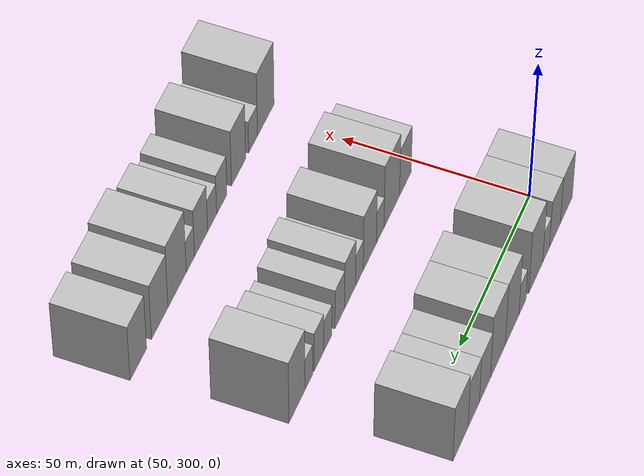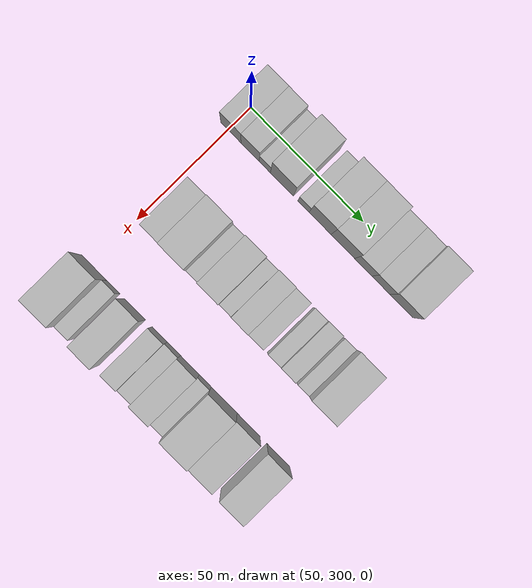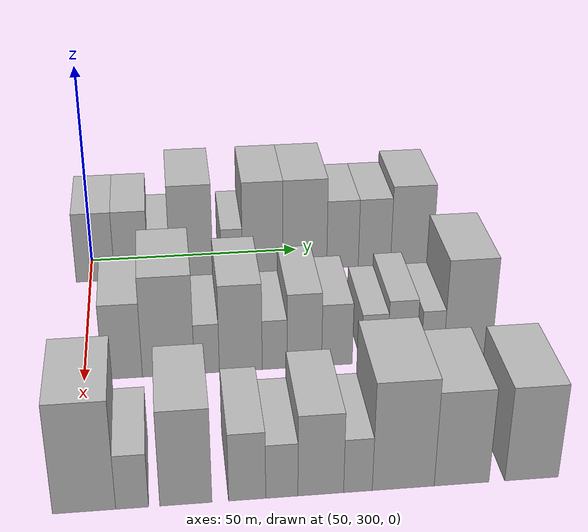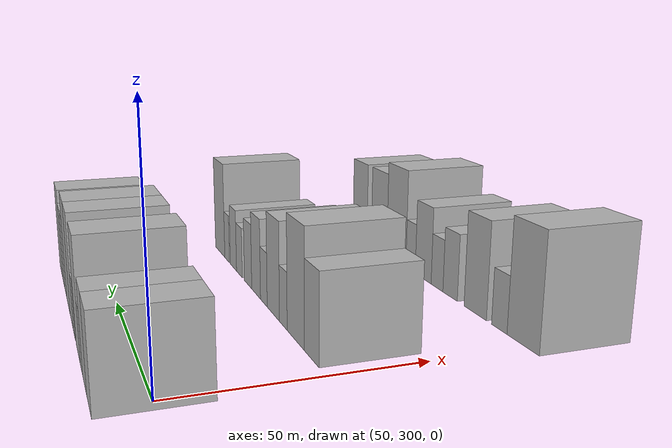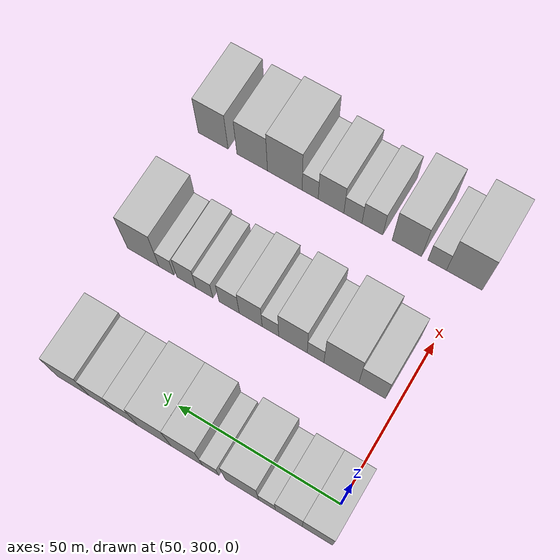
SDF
<sdf version="1.6">
 <world name="default">
  <model name="building_73">
   <static>1</static>
   <pose>50.0000 301.2231 0 0.000000 0.000000 0.000000</pose>
   <link name="link">
    <pose>0 0 9.00 0 0 0</pose>
    <collision name="collision"><geometry><box><size>20.0000 8.9927 18.0000</size></box></geometry></collision>
    <visual name="visual">
     <cast_shadows>0</cast_shadows>
     <geometry><box><size>20.0000 8.9927 18.0000</size></box></geometry>
     <material>
      <script>
       <uri>model://HANNAS_wall/materials/scripts</uri>
       <uri>model://HANNAS_wall/materials/textures</uri>
       <name>vrc/HANNAS_wall</name>
      </script>
     </material>
    </visual>
   </link>
  </model>
  <model name="building_74">
   <static>1</static>
   <pose>50.0000 309.7520 0 0.000000 0.000000 0.000000</pose>
   <link name="link">
    <pose>0 0 9.00 0 0 0</pose>
    <collision name="collision"><geometry><box><size>20.0000 8.0651 18.0000</size></box></geometry></collision>
    <visual name="visual">
     <cast_shadows>0</cast_shadows>
     <geometry><box><size>20.0000 8.0651 18.0000</size></box></geometry>
     <material>
      <script>
       <uri>model://HANNAS_wall/materials/scripts</uri>
       <uri>model://HANNAS_wall/materials/textures</uri>
       <name>vrc/HANNAS_wall</name>
      </script>
     </material>
    </visual>
   </link>
  </model>
  <model name="building_75">
   <static>1</static>
   <pose>50.0000 316.2865 0 0.000000 0.000000 0.000000</pose>
   <link name="link">
    <pose>0 0 6.00 0 0 0</pose>
    <collision name="collision"><geometry><box><size>20.0000 5.0039 12.0000</size></box></geometry></collision>
    <visual name="visual">
     <cast_shadows>0</cast_shadows>
     <geometry><box><size>20.0000 5.0039 12.0000</size></box></geometry>
     <material>
      <script>
       <uri>model://HANNAS_wall/materials/scripts</uri>
       <uri>model://HANNAS_wall/materials/textures</uri>
       <name>vrc/HANNAS_wall</name>
      </script>
     </material>
    </visual>
   </link>
  </model>
  <model name="building_76">
   <static>1</static>
   <pose>50.0000 323.8845 0 0.000000 0.000000 0.000000</pose>
   <link name="link">
    <pose>0 0 12.00 0 0 0</pose>
    <collision name="collision"><geometry><box><size>20.0000 10.1921 24.0000</size></box></geometry></collision>
    <visual name="visual">
     <cast_shadows>0</cast_shadows>
     <geometry><box><size>20.0000 10.1921 24.0000</size></box></geometry>
     <material>
      <script>
       <uri>model://HANNAS_wall/materials/scripts</uri>
       <uri>model://HANNAS_wall/materials/textures</uri>
       <name>vrc/HANNAS_wall</name>
      </script>
     </material>
    </visual>
   </link>
  </model>
  <model name="building_77">
   <static>1</static>
   <pose>50.0000 333.5135 0 0.000000 0.000000 0.000000</pose>
   <link name="link">
    <pose>0 0 6.00 0 0 0</pose>
    <collision name="collision"><geometry><box><size>20.0000 5.0658 12.0000</size></box></geometry></collision>
    <visual name="visual">
     <cast_shadows>0</cast_shadows>
     <geometry><box><size>20.0000 5.0658 12.0000</size></box></geometry>
     <material>
      <script>
       <uri>model://HANNAS_wall/materials/scripts</uri>
       <uri>model://HANNAS_wall/materials/textures</uri>
       <name>vrc/HANNAS_wall</name>
      </script>
     </material>
    </visual>
   </link>
  </model>
  <model name="building_78">
   <static>1</static>
   <pose>50.0000 340.8929 0 0.000000 0.000000 0.000000</pose>
   <link name="link">
    <pose>0 0 12.00 0 0 0</pose>
    <collision name="collision"><geometry><box><size>20.0000 9.6931 24.0000</size></box></geometry></collision>
    <visual name="visual">
     <cast_shadows>0</cast_shadows>
     <geometry><box><size>20.0000 9.6931 24.0000</size></box></geometry>
     <material>
      <script>
       <uri>model://HANNAS_wall/materials/scripts</uri>
       <uri>model://HANNAS_wall/materials/textures</uri>
       <name>vrc/HANNAS_wall</name>
      </script>
     </material>
    </visual>
   </link>
  </model>
  <model name="building_79">
   <static>1</static>
   <pose>50.0000 351.0187 0 0.000000 0.000000 0.000000</pose>
   <link name="link">
    <pose>0 0 12.00 0 0 0</pose>
    <collision name="collision"><geometry><box><size>20.0000 10.5584 24.0000</size></box></geometry></collision>
    <visual name="visual">
     <cast_shadows>0</cast_shadows>
     <geometry><box><size>20.0000 10.5584 24.0000</size></box></geometry>
     <material>
      <script>
       <uri>model://HANNAS_wall/materials/scripts</uri>
       <uri>model://HANNAS_wall/materials/textures</uri>
       <name>vrc/HANNAS_wall</name>
      </script>
     </material>
    </visual>
   </link>
  </model>
  <model name="building_80">
   <static>1</static>
   <pose>50.0000 360.1405 0 0.000000 0.000000 0.000000</pose>
   <link name="link">
    <pose>0 0 9.00 0 0 0</pose>
    <collision name="collision"><geometry><box><size>20.0000 7.6852 18.0000</size></box></geometry></collision>
    <visual name="visual">
     <cast_shadows>0</cast_shadows>
     <geometry><box><size>20.0000 7.6852 18.0000</size></box></geometry>
     <material>
      <script>
       <uri>model://HANNAS_wall/materials/scripts</uri>
       <uri>model://HANNAS_wall/materials/textures</uri>
       <name>vrc/HANNAS_wall</name>
      </script>
     </material>
    </visual>
   </link>
  </model>
  <model name="building_81">
   <static>1</static>
   <pose>50.0000 367.9223 0 0.000000 0.000000 0.000000</pose>
   <link name="link">
    <pose>0 0 9.00 0 0 0</pose>
    <collision name="collision"><geometry><box><size>20.0000 7.8785 18.0000</size></box></geometry></collision>
    <visual name="visual">
     <cast_shadows>0</cast_shadows>
     <geometry><box><size>20.0000 7.8785 18.0000</size></box></geometry>
     <material>
      <script>
       <uri>model://HANNAS_wall/materials/scripts</uri>
       <uri>model://HANNAS_wall/materials/textures</uri>
       <name>vrc/HANNAS_wall</name>
      </script>
     </material>
    </visual>
   </link>
  </model>
  <model name="building_82">
   <static>1</static>
   <pose>50.0000 377.0366 0 0.000000 0.000000 0.000000</pose>
   <link name="link">
    <pose>0 0 10.50 0 0 0</pose>
    <collision name="collision"><geometry><box><size>20.0000 10.3501 21.0000</size></box></geometry></collision>
    <visual name="visual">
     <cast_shadows>0</cast_shadows>
     <geometry><box><size>20.0000 10.3501 21.0000</size></box></geometry>
     <material>
      <script>
       <uri>model://HANNAS_wall/materials/scripts</uri>
       <uri>model://HANNAS_wall/materials/textures</uri>
       <name>vrc/HANNAS_wall</name>
      </script>
     </material>
    </visual>
   </link>
  </model>
  <model name="building_156">
   <static>1</static>
   <pose>90.0000 307.8784 0 0.000000 0.000000 0.000000</pose>
   <link name="link">
    <pose>0 0 9.00 0 0 0</pose>
    <collision name="collision"><geometry><box><size>20.0000 8.2113 18.0000</size></box></geometry></collision>
    <visual name="visual">
     <cast_shadows>0</cast_shadows>
     <geometry><box><size>20.0000 8.2113 18.0000</size></box></geometry>
     <material>
      <script>
       <uri>model://HANNAS_wall/materials/scripts</uri>
       <uri>model://HANNAS_wall/materials/textures</uri>
       <name>vrc/HANNAS_wall</name>
      </script>
     </material>
    </visual>
   </link>
  </model>
  <model name="building_157">
   <static>1</static>
   <pose>90.0000 317.3934 0 0.000000 0.000000 0.000000</pose>
   <link name="link">
    <pose>0 0 12.00 0 0 0</pose>
    <collision name="collision"><geometry><box><size>20.0000 10.8187 24.0000</size></box></geometry></collision>
    <visual name="visual">
     <cast_shadows>0</cast_shadows>
     <geometry><box><size>20.0000 10.8187 24.0000</size></box></geometry>
     <material>
      <script>
       <uri>model://HANNAS_wall/materials/scripts</uri>
       <uri>model://HANNAS_wall/materials/textures</uri>
       <name>vrc/HANNAS_wall</name>
      </script>
     </material>
    </visual>
   </link>
  </model>
  <model name="building_158">
   <static>1</static>
   <pose>90.0000 325.4134 0 0.000000 0.000000 0.000000</pose>
   <link name="link">
    <pose>0 0 6.00 0 0 0</pose>
    <collision name="collision"><geometry><box><size>20.0000 5.2213 12.0000</size></box></geometry></collision>
    <visual name="visual">
     <cast_shadows>0</cast_shadows>
     <geometry><box><size>20.0000 5.2213 12.0000</size></box></geometry>
     <material>
      <script>
       <uri>model://HANNAS_wall/materials/scripts</uri>
       <uri>model://HANNAS_wall/materials/textures</uri>
       <name>vrc/HANNAS_wall</name>
      </script>
     </material>
    </visual>
   </link>
  </model>
  <model name="building_159">
   <static>1</static>
   <pose>90.0000 332.5241 0 0.000000 0.000000 0.000000</pose>
   <link name="link">
    <pose>0 0 10.50 0 0 0</pose>
    <collision name="collision"><geometry><box><size>20.0000 9.0000 21.0000</size></box></geometry></collision>
    <visual name="visual">
     <cast_shadows>0</cast_shadows>
     <geometry><box><size>20.0000 9.0000 21.0000</size></box></geometry>
     <material>
      <script>
       <uri>model://HANNAS_wall/materials/scripts</uri>
       <uri>model://HANNAS_wall/materials/textures</uri>
       <name>vrc/HANNAS_wall</name>
      </script>
     </material>
    </visual>
   </link>
  </model>
  <model name="building_160">
   <static>1</static>
   <pose>90.0000 339.6397 0 0.000000 0.000000 0.000000</pose>
   <link name="link">
    <pose>0 0 6.00 0 0 0</pose>
    <collision name="collision"><geometry><box><size>20.0000 5.2312 12.0000</size></box></geometry></collision>
    <visual name="visual">
     <cast_shadows>0</cast_shadows>
     <geometry><box><size>20.0000 5.2312 12.0000</size></box></geometry>
     <material>
      <script>
       <uri>model://HANNAS_wall/materials/scripts</uri>
       <uri>model://HANNAS_wall/materials/textures</uri>
       <name>vrc/HANNAS_wall</name>
      </script>
     </material>
    </visual>
   </link>
  </model>
  <model name="building_161">
   <static>1</static>
   <pose>90.0000 345.9311 0 0.000000 0.000000 0.000000</pose>
   <link name="link">
    <pose>0 0 9.00 0 0 0</pose>
    <collision name="collision"><geometry><box><size>20.0000 7.3518 18.0000</size></box></geometry></collision>
    <visual name="visual">
     <cast_shadows>0</cast_shadows>
     <geometry><box><size>20.0000 7.3518 18.0000</size></box></geometry>
     <material>
      <script>
       <uri>model://HANNAS_wall/materials/scripts</uri>
       <uri>model://HANNAS_wall/materials/textures</uri>
       <name>vrc/HANNAS_wall</name>
      </script>
     </material>
    </visual>
   </link>
  </model>
  <model name="building_162">
   <static>1</static>
   <pose>90.0000 352.8649 0 0.000000 0.000000 0.000000</pose>
   <link name="link">
    <pose>0 0 7.50 0 0 0</pose>
    <collision name="collision"><geometry><box><size>20.0000 6.5157 15.0000</size></box></geometry></collision>
    <visual name="visual">
     <cast_shadows>0</cast_shadows>
     <geometry><box><size>20.0000 6.5157 15.0000</size></box></geometry>
     <material>
      <script>
       <uri>model://HANNAS_wall/materials/scripts</uri>
       <uri>model://HANNAS_wall/materials/textures</uri>
       <name>vrc/HANNAS_wall</name>
      </script>
     </material>
    </visual>
   </link>
  </model>
  <model name="building_163">
   <static>1</static>
   <pose>90.0000 360.8877 0 0.000000 0.000000 0.000000</pose>
   <link name="link">
    <pose>0 0 6.00 0 0 0</pose>
    <collision name="collision"><geometry><box><size>20.0000 5.5297 12.0000</size></box></geometry></collision>
    <visual name="visual">
     <cast_shadows>0</cast_shadows>
     <geometry><box><size>20.0000 5.5297 12.0000</size></box></geometry>
     <material>
      <script>
       <uri>model://HANNAS_wall/materials/scripts</uri>
       <uri>model://HANNAS_wall/materials/textures</uri>
       <name>vrc/HANNAS_wall</name>
      </script>
     </material>
    </visual>
   </link>
  </model>
  <model name="building_164">
   <static>1</static>
   <pose>90.0000 366.7711 0 0.000000 0.000000 0.000000</pose>
   <link name="link">
    <pose>0 0 7.50 0 0 0</pose>
    <collision name="collision"><geometry><box><size>20.0000 6.2372 15.0000</size></box></geometry></collision>
    <visual name="visual">
     <cast_shadows>0</cast_shadows>
     <geometry><box><size>20.0000 6.2372 15.0000</size></box></geometry>
     <material>
      <script>
       <uri>model://HANNAS_wall/materials/scripts</uri>
       <uri>model://HANNAS_wall/materials/textures</uri>
       <name>vrc/HANNAS_wall</name>
      </script>
     </material>
    </visual>
   </link>
  </model>
  <model name="building_165">
   <static>1</static>
   <pose>90.0000 373.3327 0 0.000000 0.000000 0.000000</pose>
   <link name="link">
    <pose>0 0 6.00 0 0 0</pose>
    <collision name="collision"><geometry><box><size>20.0000 4.8859 12.0000</size></box></geometry></collision>
    <visual name="visual">
     <cast_shadows>0</cast_shadows>
     <geometry><box><size>20.0000 4.8859 12.0000</size></box></geometry>
     <material>
      <script>
       <uri>model://HANNAS_wall/materials/scripts</uri>
       <uri>model://HANNAS_wall/materials/textures</uri>
       <name>vrc/HANNAS_wall</name>
      </script>
     </material>
    </visual>
   </link>
  </model>
  <model name="building_166">
   <static>1</static>
   <pose>90.0000 381.0127 0 0.000000 0.000000 0.000000</pose>
   <link name="link">
    <pose>0 0 12.00 0 0 0</pose>
    <collision name="collision"><geometry><box><size>20.0000 10.4741 24.0000</size></box></geometry></collision>
    <visual name="visual">
     <cast_shadows>0</cast_shadows>
     <geometry><box><size>20.0000 10.4741 24.0000</size></box></geometry>
     <material>
      <script>
       <uri>model://HANNAS_wall/materials/scripts</uri>
       <uri>model://HANNAS_wall/materials/textures</uri>
       <name>vrc/HANNAS_wall</name>
      </script>
     </material>
    </visual>
   </link>
  </model>
  <model name="building_239">
   <static>1</static>
   <pose>130.0000 301.3521 0 0.000000 0.000000 0.000000</pose>
   <link name="link">
    <pose>0 0 12.00 0 0 0</pose>
    <collision name="collision"><geometry><box><size>20.0000 11.1936 24.0000</size></box></geometry></collision>
    <visual name="visual">
     <cast_shadows>0</cast_shadows>
     <geometry><box><size>20.0000 11.1936 24.0000</size></box></geometry>
     <material>
      <script>
       <uri>model://HANNAS_wall/materials/scripts</uri>
       <uri>model://HANNAS_wall/materials/textures</uri>
       <name>vrc/HANNAS_wall</name>
      </script>
     </material>
    </visual>
   </link>
  </model>
  <model name="building_240">
   <static>1</static>
   <pose>130.0000 309.8819 0 0.000000 0.000000 0.000000</pose>
   <link name="link">
    <pose>0 0 6.00 0 0 0</pose>
    <collision name="collision"><geometry><box><size>20.0000 5.8661 12.0000</size></box></geometry></collision>
    <visual name="visual">
     <cast_shadows>0</cast_shadows>
     <geometry><box><size>20.0000 5.8661 12.0000</size></box></geometry>
     <material>
      <script>
       <uri>model://HANNAS_wall/materials/scripts</uri>
       <uri>model://HANNAS_wall/materials/textures</uri>
       <name>vrc/HANNAS_wall</name>
      </script>
     </material>
    </visual>
   </link>
  </model>
  <model name="building_241">
   <static>1</static>
   <pose>130.0000 319.5035 0 0.000000 0.000000 0.000000</pose>
   <link name="link">
    <pose>0 0 10.50 0 0 0</pose>
    <collision name="collision"><geometry><box><size>20.0000 9.3770 21.0000</size></box></geometry></collision>
    <visual name="visual">
     <cast_shadows>0</cast_shadows>
     <geometry><box><size>20.0000 9.3770 21.0000</size></box></geometry>
     <material>
      <script>
       <uri>model://HANNAS_wall/materials/scripts</uri>
       <uri>model://HANNAS_wall/materials/textures</uri>
       <name>vrc/HANNAS_wall</name>
      </script>
     </material>
    </visual>
   </link>
  </model>
  <model name="building_242">
   <static>1</static>
   <pose>130.0000 330.5554 0 0.000000 0.000000 0.000000</pose>
   <link name="link">
    <pose>0 0 7.50 0 0 0</pose>
    <collision name="collision"><geometry><box><size>20.0000 6.7268 15.0000</size></box></geometry></collision>
    <visual name="visual">
     <cast_shadows>0</cast_shadows>
     <geometry><box><size>20.0000 6.7268 15.0000</size></box></geometry>
     <material>
      <script>
       <uri>model://HANNAS_wall/materials/scripts</uri>
       <uri>model://HANNAS_wall/materials/textures</uri>
       <name>vrc/HANNAS_wall</name>
      </script>
     </material>
    </visual>
   </link>
  </model>
  <model name="building_243">
   <static>1</static>
   <pose>130.0000 336.8509 0 0.000000 0.000000 0.000000</pose>
   <link name="link">
    <pose>0 0 6.00 0 0 0</pose>
    <collision name="collision"><geometry><box><size>20.0000 5.8641 12.0000</size></box></geometry></collision>
    <visual name="visual">
     <cast_shadows>0</cast_shadows>
     <geometry><box><size>20.0000 5.8641 12.0000</size></box></geometry>
     <material>
      <script>
       <uri>model://HANNAS_wall/materials/scripts</uri>
       <uri>model://HANNAS_wall/materials/textures</uri>
       <name>vrc/HANNAS_wall</name>
      </script>
     </material>
    </visual>
   </link>
  </model>
  <model name="building_244">
   <static>1</static>
   <pose>130.0000 343.9808 0 0.000000 0.000000 0.000000</pose>
   <link name="link">
    <pose>0 0 9.00 0 0 0</pose>
    <collision name="collision"><geometry><box><size>20.0000 8.3957 18.0000</size></box></geometry></collision>
    <visual name="visual">
     <cast_shadows>0</cast_shadows>
     <geometry><box><size>20.0000 8.3957 18.0000</size></box></geometry>
     <material>
      <script>
       <uri>model://HANNAS_wall/materials/scripts</uri>
       <uri>model://HANNAS_wall/materials/textures</uri>
       <name>vrc/HANNAS_wall</name>
      </script>
     </material>
    </visual>
   </link>
  </model>
  <model name="building_245">
   <static>1</static>
   <pose>130.0000 350.8219 0 0.000000 0.000000 0.000000</pose>
   <link name="link">
    <pose>0 0 6.00 0 0 0</pose>
    <collision name="collision"><geometry><box><size>20.0000 5.2866 12.0000</size></box></geometry></collision>
    <visual name="visual">
     <cast_shadows>0</cast_shadows>
     <geometry><box><size>20.0000 5.2866 12.0000</size></box></geometry>
     <material>
      <script>
       <uri>model://HANNAS_wall/materials/scripts</uri>
       <uri>model://HANNAS_wall/materials/textures</uri>
       <name>vrc/HANNAS_wall</name>
      </script>
     </material>
    </visual>
   </link>
  </model>
  <model name="building_246">
   <static>1</static>
   <pose>130.0000 359.2235 0 0.000000 0.000000 0.000000</pose>
   <link name="link">
    <pose>0 0 12.00 0 0 0</pose>
    <collision name="collision"><geometry><box><size>20.0000 11.5166 24.0000</size></box></geometry></collision>
    <visual name="visual">
     <cast_shadows>0</cast_shadows>
     <geometry><box><size>20.0000 11.5166 24.0000</size></box></geometry>
     <material>
      <script>
       <uri>model://HANNAS_wall/materials/scripts</uri>
       <uri>model://HANNAS_wall/materials/textures</uri>
       <name>vrc/HANNAS_wall</name>
      </script>
     </material>
    </visual>
   </link>
  </model>
  <model name="building_247">
   <static>1</static>
   <pose>130.0000 370.1145 0 0.000000 0.000000 0.000000</pose>
   <link name="link">
    <pose>0 0 10.50 0 0 0</pose>
    <collision name="collision"><geometry><box><size>20.0000 10.2653 21.0000</size></box></geometry></collision>
    <visual name="visual">
     <cast_shadows>0</cast_shadows>
     <geometry><box><size>20.0000 10.2653 21.0000</size></box></geometry>
     <material>
      <script>
       <uri>model://HANNAS_wall/materials/scripts</uri>
       <uri>model://HANNAS_wall/materials/textures</uri>
       <name>vrc/HANNAS_wall</name>
      </script>
     </material>
    </visual>
   </link>
  </model>
  <model name="building_248">
   <static>1</static>
   <pose>130.0000 383.3187 0 0.000000 0.000000 0.000000</pose>
   <link name="link">
    <pose>0 0 10.50 0 0 0</pose>
    <collision name="collision"><geometry><box><size>20.0000 10.1429 21.0000</size></box></geometry></collision>
    <visual name="visual">
     <cast_shadows>0</cast_shadows>
     <geometry><box><size>20.0000 10.1429 21.0000</size></box></geometry>
     <material>
      <script>
       <uri>model://HANNAS_wall/materials/scripts</uri>
       <uri>model://HANNAS_wall/materials/textures</uri>
       <name>vrc/HANNAS_wall</name>
      </script>
     </material>
    </visual>
   </link>
  </model>
 </world>
</sdf>
